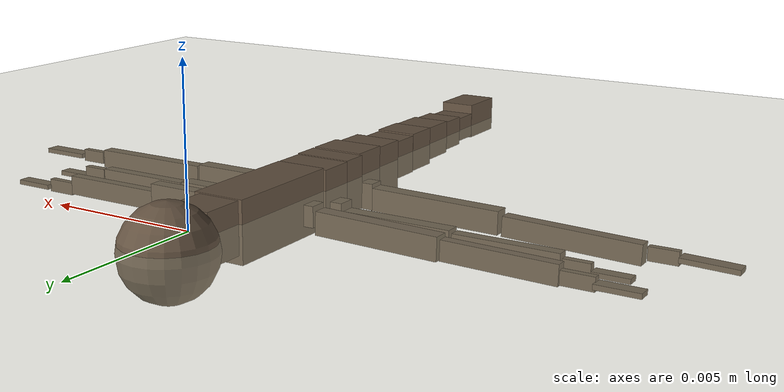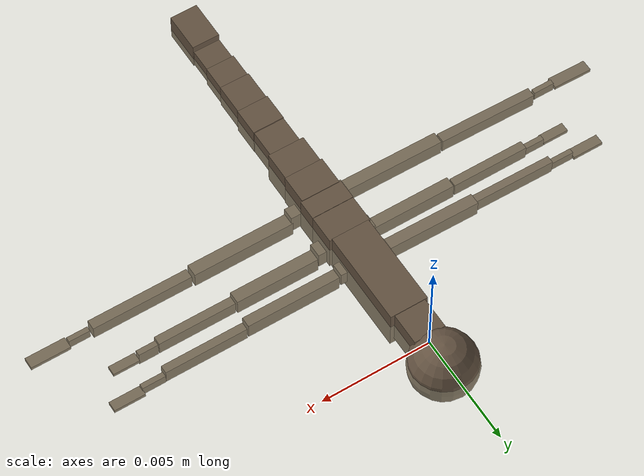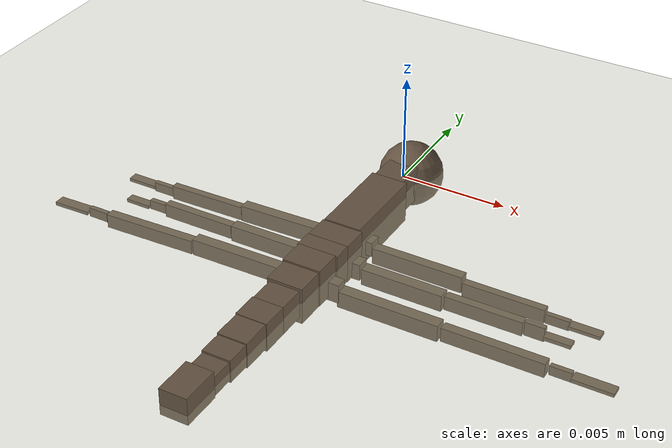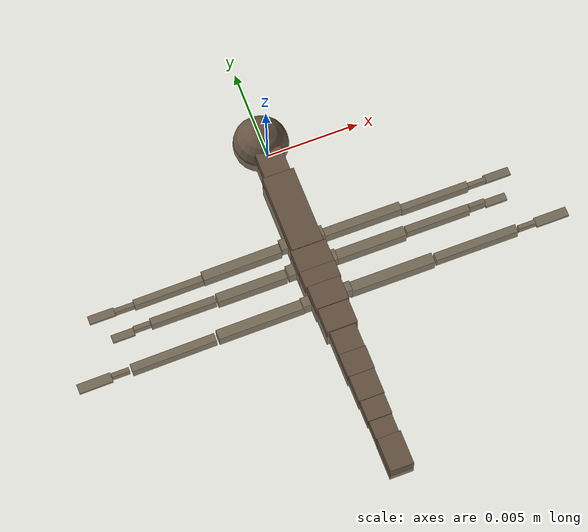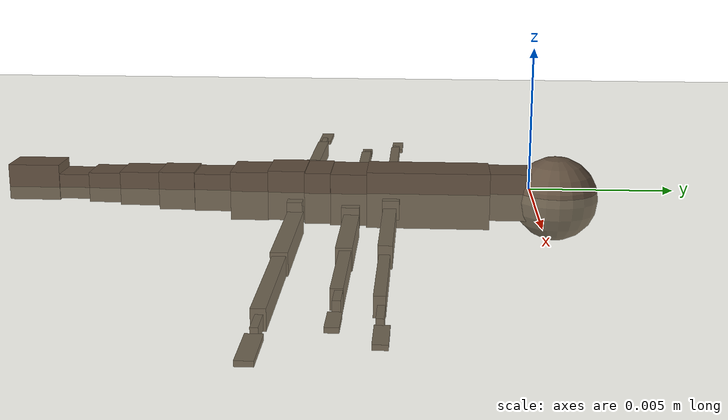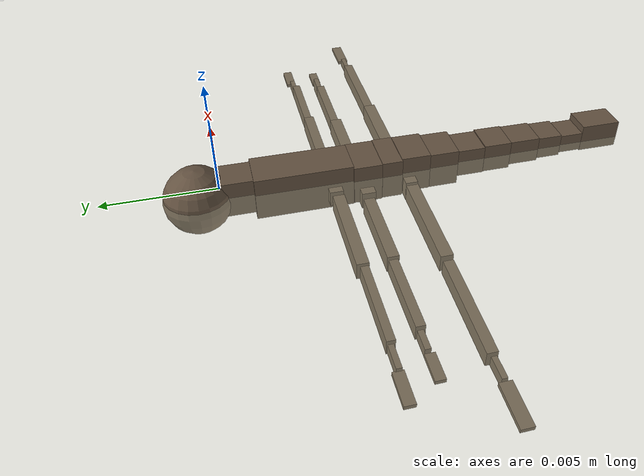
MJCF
<?xml version='1.0' encoding='utf-8'?>
<mujoco model="sungaya">
      <option integrator="RK4"/>
      <visual>
        <global offwidth="2048" offheight="2048"/>
      </visual>
      <compiler angle="radian" autolimits="true"/>
        <custom>
        <numeric data="0 0 0.05 0.7 0 0 0.7 0 0 0 0 0 0 0 0 0 0 0 0 0 0 0 0 0 0 0 0 0 0 0 0 0 0 0 0 0 0 0 0 0 0 0 0 0 0" name="qpos0"/>
        <numeric data="0.01" name="dt"/>
        <numeric data="15" name="substeps"/>
        <numeric data="0.1" name="baumgarte_erp"/>
        </custom>

    <worldbody>
        <light diffuse=".75 .75 .75" pos="0 0 10" dir="0 0 -1"/>

        <geom type="plane" size="0.1 0.1 0.01" rgba=".7 .7 .6 1"/>
        <body name="reference_base" pos="0 0 0">
            <joint armature="0" damping="0" limited="false" margin="0.01" name="root" pos="0 0 0" type="free"/>
        <geom name="03-caput" size="0.00149427" pos="-5.24869e-05 0.000941675 -0.000344469" rgba="0.4 0.33 0.26 1.0" />
        <geom name="04-t1" size="0.000713237 0.000717915 0.000842712" pos="2.17649e-06 -0.00070639 -0.000159406" type="box" rgba="0.4 0.33 0.26 1.0" />
        <body name="04-t1-l" pos="4.21295e-05 -0.00142995 -0.000246174">
            <inertial pos="0 0 0" mass="0.01" diaginertia="0.001 0.001 0.001" />
            <geom name="05-t2" size="0.000865397 0.00215931 0.00100157" pos="-1.27246e-05 -0.00215714 -3.96312e-05" type="box" rgba="0.4 0.33 0.26 1.0" />
            <body name="05-t2-l" pos="-1.4549e-06 -0.00430799 -3.55078e-05">
                <inertial pos="0 0 0" mass="0.01" diaginertia="0.001 0.001 0.001" />
                <geom name="06-t3" size="0.000960231 0.000641229 0.000922256" pos="2.73852e-06 -0.000634313 1.76948e-05" type="box" rgba="0.4 0.33 0.26 1.0" />
                <body name="06-t3-l" pos="-1.60261e-05 -0.00127103 2.06451e-06">
                    <inertial pos="0 0 0" mass="0.01" diaginertia="0.001 0.001 0.001" />
                    <geom name="07-a2" size="0.000965959 0.000459281 0.000912372" pos="2.09951e-05 -0.000455685 5.58723e-05" type="box" rgba="0.4 0.33 0.26 1.0" />
                    <body name="07-a2-l" pos="2.54216e-05 -0.000909254 0.000100916">
                        <inertial pos="0 0 0" mass="0.01" diaginertia="0.001 0.001 0.001" />
                        <joint type="hinge" name="07-a2-l" pos="0 0 0" axis="1 0 0" range="-3.14 3.14" />
                        <geom name="08-a3" size="0.000887816 0.00065527 0.000887237" pos="3.22609e-06 -0.000649549 2.07727e-05" type="box" rgba="0.4 0.33 0.26 1.0" />
                        <body name="08-a3-l" pos="8.07024e-06 -0.00129344 5.3167e-05">
                            <inertial pos="0 0 0" mass="0.01" diaginertia="0.001 0.001 0.001" />
                            <joint type="hinge" name="08-a3-l" pos="0 0 0" axis="1 0 0" range="-3.14 3.14" />
                            <geom name="09-a4" size="0.000834476 0.000681203 0.000865493" pos="3.04102e-06 -0.000670744 -8.44479e-05" type="box" rgba="0.4 0.33 0.26 1.0" />
                            <body name="09-a4-l" pos="8.11249e-06 -0.00134962 4.00092e-05">
                                <inertial pos="0 0 0" mass="0.01" diaginertia="0.001 0.001 0.001" />
                                <joint type="hinge" name="09-a4-l" pos="0 0 0" axis="1 0 0" range="-3.14 3.14" />
                                <geom name="10-a5" size="0.000704729 0.000658293 0.000667025" pos="1.64041e-06 -0.000656146 -4.87305e-05" type="box" rgba="0.4 0.33 0.26 1.0" />
                                <body name="10-a5-l" pos="8.62755e-06 -0.00131172 -2.10435e-05">
                                    <inertial pos="0 0 0" mass="0.01" diaginertia="0.001 0.001 0.001" />
                                    <joint type="hinge" name="10-a5-l" pos="0 0 0" axis="1 0 0" range="-3.14 3.14" />
                                    <geom name="11-a6" size="0.000720344 0.000635323 0.000676071" pos="4.33737e-06 -0.000632805 1.85342e-05" type="box" rgba="0.4 0.33 0.26 1.0" />
                                    <body name="11-a6-l" pos="8.04149e-06 -0.00126429 5.28563e-05">
                                        <inertial pos="0 0 0" mass="0.01" diaginertia="0.001 0.001 0.001" />
                                        <joint type="hinge" name="11-a6-l" pos="0 0 0" axis="1 0 0" range="-3.14 3.14" />
                                        <geom name="12-a7" size="0.000683332 0.000704938 0.00059961" pos="5.06168e-06 -0.000701 2.06256e-05" type="box" rgba="0.4 0.33 0.26 1.0" />
                                        <body name="12-a7-l" pos="2.35532e-05 -0.00140457 -1.60789e-05">
                                            <inertial pos="0 0 0" mass="0.01" diaginertia="0.001 0.001 0.001" />
                                            <joint type="hinge" name="12-a7-l" pos="0 0 0" axis="1 0 0" range="-3.14 3.14" />
                                            <geom name="13-a8" size="0.000650966 0.000568766 0.000532876" pos="-1.01606e-05 -0.000567316 5.14981e-05" type="box" rgba="0.4 0.33 0.26 1.0" />
                                            <body name="13-a8-l" pos="-7.70643e-06 -0.00113178 0.000132728">
                                                <inertial pos="0 0 0" mass="0.01" diaginertia="0.001 0.001 0.001" />
                                                <joint type="hinge" name="13-a8-l" pos="0 0 0" axis="1 0 0" range="-3.14 3.14" />
                                                <geom name="14-a9" size="0.000611923 0.000548143 0.000441068" pos="1.51173e-06 -0.000544691 -6.99077e-05" type="box" rgba="0.4 0.33 0.26 1.0" />
                                                <body name="14-a9-l" pos="6.80901e-06 -0.00109024 -9.04712e-05">
                                                    <inertial pos="0 0 0" mass="0.01" diaginertia="0.001 0.001 0.001" />
                                                    <joint type="hinge" name="14-a9-l" pos="0 0 0" axis="1 0 0" range="-3.14 3.14" />
                                                    <geom name="15-a10" size="0.00063153 0.000910222 0.000634835" pos="1.05717e-05 -0.000907943 0.000163787" type="box" rgba="0.4 0.33 0.26 1.0" />
                                                </body>
                                            </body>
                                        </body>
                                    </body>
                                </body>
                            </body>
                        </body>
                    <body name="26-h-l-coxa-l" pos="-0.000817213 -0.000356208 -0.000466443">
                        <inertial pos="0 0 0" mass="0.01" diaginertia="0.001 0.001 0.001" />
                        <joint type="hinge" name="26-h-l-coxa-l" pos="0 0 0" axis="0 0 -1" range="-3.14 3.14" />
                        <geom name="26-h-l-coxa" size="0.000322026 0.000270653 0.00045107" pos="-0.00019179 2.18258e-05 -7.38225e-05" type="box" rgba="0.4 0.33 0.26 1.0" />
                        <body name="27-h-l-femur-l" pos="-0.000423852 4.56937e-05 -0.000307395" quat="0.987992 1.55568e-12 0.154502 2.07607e-08">
                            <inertial pos="0 0 0" mass="0.01" diaginertia="0.001 0.001 0.001" />
                            <joint type="hinge" name="27-h-l-femur-l" pos="0 0 0" axis="0 1 0" range="-3.14 3.14" />
                            <geom name="27-h-l-femur" size="0.00232176 0.000271339 0.000391676" pos="-0.00227579 -3.74297e-05 -0.000605274" quat="0.986874 -1.58607e-12 -0.161491 -2.16968e-08" type="box" rgba="0.4 0.33 0.26 1.0" />
                            <body name="28-h-l-tibia-l" pos="-0.00447627 -1.95907e-05 -0.0015365" quat="1 0 1.49e-08 0">
                                <inertial pos="0 0 0" mass="0.01" diaginertia="0.001 0.001 0.001" />
                                <joint type="hinge" name="28-h-l-tibia-l" pos="0 0 0" axis="0 -1 0.0" range="-3.14 3.14" />
                                <geom name="28-h-l-tibia" size="0.002278 0.000222 0.000335031" pos="-0.00222862 -2.94404e-05 -0.000689297" quat="0.98557 1.65593e-12 -0.16927 -2.27405e-08" type="box" rgba="0.4 0.33 0.26 1.0" />
                                <body name="29-h-l-tarsus-l" pos="-0.00449652 -3.2062e-05 -0.0014177" quat="1 0 1.49e-08 0">
                                    <inertial pos="0 0 0" mass="0.01" diaginertia="0.001 0.001 0.001" />
                                    <joint type="hinge" name="29-h-l-tarsus-l" pos="0 0 0" axis="0 1 0.0" range="-3.14 3.14" />
                                    <geom name="29-h-l-tarsus" size="0.000477453 0.000113415 0.000224862" pos="-0.000467184 4.72285e-06 -0.000160826" quat="0.988233 2.40259e-12 -0.152958 -2.05495e-08" type="box" rgba="0.4 0.33 0.26 1.0" />
                                    <body name="30-h-l-claws-l" pos="-0.000915603 7.69482e-06 -0.000296998" quat="1 0 1.49e-08 0">
                                        <inertial pos="0 0 0" mass="0.01" diaginertia="0.001 0.001 0.001" />
                                        <joint type="hinge" name="30-h-l-claws-l" pos="0 0 0" axis="0 1 0.0" range="-3.14 3.14" />
                                        <geom name="30-h-l-claws" size="0.000901551 0.000259963 8.37348e-05" pos="-0.000866338 -2.77746e-05 -0.000312802" quat="0.985773 1.78305e-12 -0.168084 -2.25828e-08" type="box" rgba="0.4 0.33 0.26 1.0" />
                                    </body>
                                </body>
                            </body>
                        </body>
                    </body>
                    <body name="42-h-r-coxa-l" pos="0.000861746 -0.000345635 -0.000465158">
                        <inertial pos="0 0 0" mass="0.01" diaginertia="0.001 0.001 0.001" />
                        <joint type="hinge" name="42-h-r-coxa-l" pos="0 0 0" axis="0 0 1" range="-3.14 3.14" />
                        <geom name="42-h-r-coxa" size="0.000320097 0.00026969 0.000450966" pos="0.000191144 2.39373e-05 -7.35639e-05" type="box" rgba="0.4 0.33 0.26 1.0" />
                        <body name="43-h-r-femur-l" pos="0.000423712 5.10311e-05 -0.000306747" quat="0.988071 0 -0.154001 -2.06938e-08">
                            <inertial pos="0 0 0" mass="0.01" diaginertia="0.001 0.001 0.001" />
                            <joint type="hinge" name="43-h-r-femur-l" pos="0 0 0" axis="0 -1 0" range="-3.14 3.14" />
                            <geom name="43-h-r-femur" size="0.00232224 0.000280654 0.0003915" pos="0.00222649 8.62393e-06 -0.000758239" quat="0.988071 0 0.154001 2.06938e-08" type="box" rgba="0.4 0.33 0.26 1.0" />
                            <body name="44-h-r-tibia-l" pos="0.0044785 3.67995e-05 -0.00152965">
                                <inertial pos="0 0 0" mass="0.01" diaginertia="0.001 0.001 0.001" />
                                <joint type="hinge" name="44-h-r-tibia-l" pos="0 0 0" axis="0 1 0.0" range="-3.14 3.14" />
                                <geom name="44-h-r-tibia" size="0.00227813 0.000222 0.000335" pos="0.00222988 -1.40283e-05 -0.000685865" quat="0.988071 3.30456e-09 0.154001 2.01787e-08" type="box" rgba="0.4 0.33 0.26 1.0" />
                                <body name="45-h-r-tarsus-l" pos="0.00449872 2.45837e-05 -0.00141082" quat="1 0 1.49e-08 0">
                                    <inertial pos="0 0 0" mass="0.01" diaginertia="0.001 0.001 0.001" />
                                    <joint type="hinge" name="45-h-r-tarsus-l" pos="0 0 0" axis="0 -1 0.0" range="-3.14 3.14" />
                                    <geom name="45-h-r-tarsus" size="0.000477326 0.000113396 0.000224184" pos="0.000466772 4.7597e-06 -0.000160136" quat="0.988071 3.30456e-09 0.154001 2.01787e-08" type="box" rgba="0.4 0.33 0.26 1.0" />
                                    <body name="46-h-r-claws-l" pos="0.000915888 1.92288e-05 -0.000295598" quat="1 0 1.49e-08 0">
                                        <inertial pos="0 0 0" mass="0.01" diaginertia="0.001 0.001 0.001" />
                                        <joint type="hinge" name="46-h-r-claws-l" pos="0 0 0" axis="0 -1 0.0" range="-3.14 3.14" />
                                        <geom name="46-h-r-claws" size="0.000901932 0.000259661 8.35e-05" pos="0.000867407 -6.23643e-06 -0.000311472" quat="0.988071 3.30456e-09 0.154001 2.01787e-08" type="box" rgba="0.4 0.33 0.26 1.0" />
                                    </body>
                                </body>
                            </body>
                        </body>
                    </body>
                </body>
                <body name="21-m-l-coxa-l" pos="-0.000712497 0.000737672 -0.000452174">
                    <inertial pos="0 0 0" mass="0.01" diaginertia="0.001 0.001 0.001" />
                    <joint type="hinge" name="21-m-l-coxa-l" pos="0 0 0" axis="0 0 -1" range="-3.14 3.14" />
                    <geom name="21-m-l-coxa" size="0.000421454 0.000313806 0.000393854" pos="-0.000232919 -2.39988e-05 -9.91887e-05" type="box" rgba="0.4 0.33 0.26 1.0" />
                    <body name="22-m-l-femur-l" pos="-0.000630804 -3.51798e-05 -0.000315487" quat="0.98995 0 0.141415 1.90021e-08">
                        <inertial pos="0 0 0" mass="0.01" diaginertia="0.001 0.001 0.001" />
                        <joint type="hinge" name="22-m-l-femur-l" pos="0 0 0" axis="0 1 0" range="-3.14 3.14" />
                        <geom name="22-m-l-femur" size="0.0018953 0.00025126 0.0003915" pos="-0.00187516 2.74403e-05 -0.000585178" quat="0.98995 1.40893e-12 -0.141415 7.90547e-10" type="box" rgba="0.4 0.33 0.26 1.0" />
                        <body name="23-m-l-tibia-l" pos="-0.00373081 8.10779e-05 -0.00116357">
                            <inertial pos="0 0 0" mass="0.01" diaginertia="0.001 0.001 0.001" />
                            <joint type="hinge" name="23-m-l-tibia-l" pos="0 0 0" axis="0 -1 0.0" range="-3.14 3.14" />
                            <geom name="23-m-l-tibia" size="0.00176462 0.000195388 0.000335" pos="-0.00172269 -2.62468e-05 -0.000497057" quat="0.98995 1.40893e-12 -0.141415 7.90547e-10" type="box" rgba="0.4 0.33 0.26 1.0" />
                            <body name="24-m-l-tarsus-l" pos="-0.00345332 -7.4762e-07 -0.00104215">
                                <inertial pos="0 0 0" mass="0.01" diaginertia="0.001 0.001 0.001" />
                                <joint type="hinge" name="24-m-l-tarsus-l" pos="0 0 0" axis="0 1 0.0" range="-3.14 3.14" />
                                <geom name="24-m-l-tarsus" size="0.000442816 0.00012258 0.000225" pos="-0.000414602 -6.9477e-07 -0.000128837" quat="0.98995 1.40894e-12 -0.141415 7.90547e-10" type="box" rgba="0.4 0.33 0.26 1.0" />
                                <body name="25-m-l-claws-l" pos="-0.000831341 2.90463e-05 -0.000251224">
                                    <inertial pos="0 0 0" mass="0.01" diaginertia="0.001 0.001 0.001" />
                                    <joint type="hinge" name="25-m-l-claws-l" pos="0 0 0" axis="0 1 0.0" range="-3.14 3.14" />
                                    <geom name="25-m-l-claws" size="0.000596539 0.000211304 8.35e-05" pos="-0.000562719 -9.41032e-05 -0.00024871" quat="0.98995 1.40894e-12 -0.141415 7.90547e-10" type="box" rgba="0.4 0.33 0.26 1.0" />
                                </body>
                            </body>
                        </body>
                    </body>
                </body>
                <body name="37-m-r-coxa-l" pos="0.000695185 0.000746537 -0.000451098">
                    <inertial pos="0 0 0" mass="0.01" diaginertia="0.001 0.001 0.001" />
                    <joint type="hinge" name="37-m-r-coxa-l" pos="0 0 0" axis="0 0 1" range="-3.14 3.14" />
                    <geom name="37-m-r-coxa" size="0.000423258 0.000313125 0.000393504" pos="0.000234251 -2.20893e-05 -9.85875e-05" type="box" rgba="0.4 0.33 0.26 1.0" />
                    <body name="38-m-r-femur-l" pos="0.000631678 -2.72279e-05 -0.000314522" quat="0.989456 -2.22389e-12 -0.144837 -1.94622e-08">
                        <inertial pos="0 0 0" mass="0.01" diaginertia="0.001 0.001 0.001" />
                        <joint type="hinge" name="38-m-r-femur-l" pos="0 0 0" axis="0 -1 0" range="-3.14 3.14" />
                        <geom name="38-m-r-femur" size="0.00189654 0.000273892 0.0003915" pos="0.0018735 5.03578e-05 -0.000582443" quat="0.989456 2.91172e-09 0.144837 1.90357e-08" type="box" rgba="0.4 0.33 0.26 1.0" />
                        <body name="39-m-r-tibia-l" pos="0.00373127 0.000128067 -0.00115786">
                            <inertial pos="0 0 0" mass="0.01" diaginertia="0.001 0.001 0.001" />
                            <joint type="hinge" name="39-m-r-tibia-l" pos="0 0 0" axis="0 1.0 0.0" range="-3.14 3.14" />
                            <geom name="39-m-r-tibia" size="0.00176668 0.000195701 0.000335" pos="0.00172319 -2.60931e-05 -0.000494435" quat="0.989456 2.91172e-09 0.144837 1.90357e-08" type="box" rgba="0.4 0.33 0.26 1.0" />
                            <body name="40-m-r-tarsus-l" pos="0.00345464 4.27538e-05 -0.00103686">
                                <inertial pos="0 0 0" mass="0.01" diaginertia="0.001 0.001 0.001" />
                                <joint type="hinge" name="40-m-r-tarsus-l" pos="0 0 0" axis="0 -1.0 0.0" range="-3.14 3.14" />
                                <geom name="40-m-r-tarsus" size="0.000442301 0.000122559 0.000335" pos="0.000414367 -7.7812e-07 -0.000128199" quat="0.989456 2.91172e-09 0.144837 1.90357e-08" type="box" rgba="0.4 0.33 0.26 1.0" />
                                <body name="41-m-r-claws-l" pos="0.000831292 3.95158e-05 -0.000249951">
                                    <inertial pos="0 0 0" mass="0.01" diaginertia="0.001 0.001 0.001" />
                                    <joint type="hinge" name="41-m-r-claws-l" pos="0 0 0" axis="0 -1.0 0.0" range="-3.14 3.14" />
                                    <geom name="41-m-r-claws" size="0.00059705 0.000211357 8.35e-05" pos="0.000563421 -7.98677e-05 -0.000247802" quat="0.989456 2.91172e-09 0.144837 1.90357e-08" type="box" rgba="0.4 0.33 0.26 1.0" />
                                </body>
                            </body>
                        </body>
                    </body>
                </body>
            </body>
            <body name="16-f-l-coxa-l" pos="-0.000584662 0.000865526 -0.000268343">
                <inertial pos="0 0 0" mass="0.01" diaginertia="0.001 0.001 0.001" />
                <joint type="hinge" name="16-f-l-coxa-l" pos="0 0 0" axis="0 0 -1" range="-3.14 3.14" />
                <geom name="16-f-l-coxa" size="0.000397624 0.000299789 0.000348915" pos="-0.000244701 -1.63685e-05 -1.1691e-05" type="box" rgba="0.4 0.33 0.26 1.0" />
                <body name="17-f-l-femur-l" pos="-0.00062063 -3.04091e-05 -0.000205417" quat="0.995466 2.13088e-12 0.0951175 1.27783e-08">
                    <inertial pos="0 0 0" mass="0.01" diaginertia="0.001 0.001 0.001" />
                    <joint type="hinge" name="17-f-l-femur-l" pos="0 0 0" axis="0 1 0" range="-3.14 3.14" />
                    <geom name="17-f-l-femur" size="0.00213422 0.00025951 0.0003915" pos="-0.00211681 -5.39212e-05 -0.000482417" quat="0.9943 -2.71124e-09 -0.106618 -2.61238e-10" type="box" rgba="0.4 0.33 0.26 1.0" />
                    <body name="18-f-l-tibia-l" pos="-0.00421775 -8.42218e-05 -0.000994403" quat="1 0 7.45e-09 0">
                        <inertial pos="0 0 0" mass="0.01" diaginertia="0.001 0.001 0.001" />
                        <joint type="hinge" name="18-f-l-tibia-l" pos="0 0 0" axis="0 -1 0.0" range="-3.14 3.14" />
                        <geom name="18-f-l-tibia" size="0.0018741 0.000174657 0.000335" pos="-0.00183924 -2.13366e-05 -0.000390169" quat="0.994552 -2.65285e-09 -0.104239 -2.53454e-10" type="box" rgba="0.4 0.33 0.26 1.0" />
                        <body name="19-f-l-tarsus-l" pos="-0.00369065 2.67476e-06 -0.000807307" quat="1 0 7.45e-09 0">
                            <inertial pos="0 0 0" mass="0.01" diaginertia="0.001 0.001 0.001" />
                            <joint type="hinge" name="19-f-l-tarsus-l" pos="0 0 0" axis="0 1 0.0" range="-3.14 3.14" />
                            <geom name="19-f-l-tarsus" size="0.000528083 0.00011624 0.000225" pos="-0.000499104 -5.57117e-06 -0.000141514" quat="0.995387 -2.44367e-09 -0.0959459 -2.35547e-10" type="box" rgba="0.4 0.33 0.26 1.0" />
                            <body name="20-f-l-claws-l" pos="-0.00100061 -2.04411e-05 -0.000281606" quat="1 0 7.45e-09 0">
                                <inertial pos="0 0 0" mass="0.01" diaginertia="0.001 0.001 0.001" />
                                <joint type="hinge" name="20-f-l-claws-l" pos="0 0 0" axis="0 1 0.0" range="-3.14 3.14" />
                                <geom name="20-f-l-claws" size="0.00070677 0.000226513 8.35e-05" pos="-0.000678042 5.03608e-05 -0.000109415" quat="0.995466 -2.05844e-12 -0.0951176 2.36534e-10" type="box" rgba="0.4 0.33 0.26 1.0" />
                            </body>
                        </body>
                    </body>
                </body>
            </body>
            <body name="31-f-r-coxa-l" pos="0.000508251 0.000872408 -0.000267507">
                <inertial pos="0 0 0" mass="0.01" diaginertia="0.001 0.001 0.001" />
                <joint type="hinge" name="31-f-r-coxa-l" pos="0 0 0" axis="0 0 1" range="-3.14 3.14" />
                <geom name="31-f-r-coxa" size="0.00039681 0.000296867 0.000348577" pos="0.000243399 -1.4788e-05 -1.10955e-05" type="box" rgba="0.4 0.33 0.26 1.0" />
                <body name="32-f-r-femur-l" pos="0.000621275 -2.25869e-05 -0.000204468" quat="0.996539 -1.2752e-12 -0.0831212 -1.11678e-08">
                    <inertial pos="0 0 0" mass="0.01" diaginertia="0.001 0.001 0.001" />
                    <joint type="hinge" name="32-f-r-femur-l" pos="0 0 0" axis="0 -1.0 0" range="-3.14 3.14" />
                    <geom name="32-f-r-femur" size="0.00213397 0.00023355 0.0003915" pos="0.00211918 -2.77292e-05 -0.000479202" quat="0.996539 9.40455e-10 0.0831212 1.10893e-08" type="box" rgba="0.4 0.33 0.26 1.0" />
                    <body name="33-f-r-tibia-l" pos="0.00421999 -3.10876e-05 -0.00098795">
                        <inertial pos="0 0 0" mass="0.01" diaginertia="0.001 0.001 0.001" />
                        <joint type="hinge" name="33-f-r-tibia-l" pos="0 0 0" axis="0 1 0" range="-3.14 3.14" />
                        <geom name="33-f-r-tibia" size="0.00187435 0.000182726 0.000335" pos="0.00183977 -1.32583e-05 -0.000387248" quat="0.996539 9.40455e-10 0.0831212 1.10893e-08" type="box" rgba="0.4 0.33 0.26 1.0" />
                        <body name="35-f-r-tarsus-l" pos="0.00369156 4.91617e-05 -0.000801659">
                            <inertial pos="0 0 0" mass="0.01" diaginertia="0.001 0.001 0.001" />
                            <joint type="hinge" name="35-f-r-tarsus-l" pos="0 0 0" axis="0 -1.0 0.0" range="-3.14 3.14" />
                            <geom name="35-f-r-tarsus" size="0.00052802 0.000116403 0.000225" pos="0.000499769 -5.4962e-06 -0.000140754" quat="0.996539 9.40455e-10 0.0831212 1.10893e-08" type="box" rgba="0.4 0.33 0.26 1.0" />
                            <body name="36-f-r-claws-l" pos="0.00100122 -7.83429e-06 -0.000280076">
                                <inertial pos="0 0 0" mass="0.01" diaginertia="0.001 0.001 0.001" />
                                <joint type="hinge" name="36-f-r-claws-l" pos="0 0 0" axis="0 -1.0 0.0" range="-3.14 3.14" />
                                <geom name="36-f-r-claws" size="0.000706716 0.000226432 8.35e-05" pos="0.000678616 6.72541e-05 -0.000108414" quat="0.996539 9.40455e-10 0.0831212 1.10893e-08" type="box" rgba="0.4 0.33 0.26 1.0" />
                            </body>
                        </body>
                    </body>
                </body>
            </body>
        </body>
        </body>
    </body>
    </worldbody>
    <actuator>

        <motor forcelimited="true" forcerange="-10 10" ctrllimited="true" ctrlrange="-1.0 1.0"  name="07-a2-l" joint="07-a2-l" gear="1" />
        <motor forcelimited="true" forcerange="-10 10" ctrllimited="true" ctrlrange="-1.0 1.0"  name="08-a3-l" joint="08-a3-l" gear="1" />
        <motor forcelimited="true" forcerange="-10 10" ctrllimited="true" ctrlrange="-1.0 1.0"  name="09-a4-l" joint="09-a4-l" gear="1" />
        <motor forcelimited="true" forcerange="-10 10" ctrllimited="true" ctrlrange="-1.0 1.0"  name="10-a5-l" joint="10-a5-l" gear="1" />
        <motor forcelimited="true" forcerange="-10 10" ctrllimited="true" ctrlrange="-1.0 1.0"  name="11-a6-l" joint="11-a6-l" gear="1" />
        <motor forcelimited="true" forcerange="-10 10" ctrllimited="true" ctrlrange="-1.0 1.0"  name="12-a7-l" joint="12-a7-l" gear="1" />
        <motor forcelimited="true" forcerange="-10 10" ctrllimited="true" ctrlrange="-1.0 1.0"  name="13-a8-l" joint="13-a8-l" gear="1" />
        <motor forcelimited="true" forcerange="-10 10" ctrllimited="true" ctrlrange="-1.0 1.0"  name="14-a9-l" joint="14-a9-l" gear="1" />

        <motor forcelimited="true" forcerange="-10 10" ctrllimited="true" ctrlrange="-1.0 1.0"  name="26-h-l-coxa-l" joint="26-h-l-coxa-l" gear="1" />
        <motor forcelimited="true" forcerange="-10 10" ctrllimited="true" ctrlrange="-1.0 1.0"  name="27-h-l-femur-l" joint="27-h-l-femur-l" gear="1" />
        <motor forcelimited="true" forcerange="-10 10" ctrllimited="true" ctrlrange="-1.0 1.0"  name="28-h-l-tibia-l" joint="28-h-l-tibia-l" gear="1" />
        <motor forcelimited="true" forcerange="-10 10" ctrllimited="true" ctrlrange="-1.0 1.0"  name="29-h-l-tarsus-l" joint="29-h-l-tarsus-l" gear="1" />
        <motor forcelimited="true" forcerange="-10 10" ctrllimited="true" ctrlrange="-1.0 1.0"  name="30-h-l-claws-l" joint="30-h-l-claws-l" gear="1" />
        <motor forcelimited="true" forcerange="-10 10" ctrllimited="true" ctrlrange="-1.0 1.0"  name="42-h-r-coxa-l" joint="42-h-r-coxa-l" gear="1" />
        <motor forcelimited="true" forcerange="-10 10" ctrllimited="true" ctrlrange="-1.0 1.0"  name="43-h-r-femur-l" joint="43-h-r-femur-l" gear="1" />
        <motor forcelimited="true" forcerange="-10 10" ctrllimited="true" ctrlrange="-1.0 1.0"  name="44-h-r-tibia-l" joint="44-h-r-tibia-l" gear="1" />
        <motor forcelimited="true" forcerange="-10 10" ctrllimited="true" ctrlrange="-1.0 1.0"  name="45-h-r-tarsus-l" joint="45-h-r-tarsus-l" gear="1" />
        <motor forcelimited="true" forcerange="-10 10" ctrllimited="true" ctrlrange="-1.0 1.0"  name="46-h-r-claws-l" joint="46-h-r-claws-l" gear="1" />
        <motor forcelimited="true" forcerange="-10 10" ctrllimited="true" ctrlrange="-1.0 1.0"  name="21-m-l-coxa-l" joint="21-m-l-coxa-l" gear="1" />
        <motor forcelimited="true" forcerange="-10 10" ctrllimited="true" ctrlrange="-1.0 1.0"  name="22-m-l-femur-l" joint="22-m-l-femur-l" gear="1" />
        <motor forcelimited="true" forcerange="-10 10" ctrllimited="true" ctrlrange="-1.0 1.0"  name="23-m-l-tibia-l" joint="23-m-l-tibia-l" gear="1" />
        <motor forcelimited="true" forcerange="-10 10" ctrllimited="true" ctrlrange="-1.0 1.0"  name="24-m-l-tarsus-l" joint="24-m-l-tarsus-l" gear="1" />
        <motor forcelimited="true" forcerange="-10 10" ctrllimited="true" ctrlrange="-1.0 1.0"  name="25-m-l-claws-l" joint="25-m-l-claws-l" gear="1" />
        <motor forcelimited="true" forcerange="-10 10" ctrllimited="true" ctrlrange="-1.0 1.0"  name="37-m-r-coxa-l" joint="37-m-r-coxa-l" gear="1" />
        <motor forcelimited="true" forcerange="-10 10" ctrllimited="true" ctrlrange="-1.0 1.0"  name="38-m-r-femur-l" joint="38-m-r-femur-l" gear="1" />
        <motor forcelimited="true" forcerange="-10 10" ctrllimited="true" ctrlrange="-1.0 1.0"  name="39-m-r-tibia-l" joint="39-m-r-tibia-l" gear="1" />
        <motor forcelimited="true" forcerange="-10 10" ctrllimited="true" ctrlrange="-1.0 1.0"  name="40-m-r-tarsus-l" joint="40-m-r-tarsus-l" gear="1" />
        <motor forcelimited="true" forcerange="-10 10" ctrllimited="true" ctrlrange="-1.0 1.0"  name="41-m-r-claws-l" joint="41-m-r-claws-l" gear="1" />
        <motor forcelimited="true" forcerange="-10 10" ctrllimited="true" ctrlrange="-1.0 1.0"  name="16-f-l-coxa-l" joint="16-f-l-coxa-l" gear="1" />
        <motor forcelimited="true" forcerange="-10 10" ctrllimited="true" ctrlrange="-1.0 1.0"  name="17-f-l-femur-l" joint="17-f-l-femur-l" gear="1" />
        <motor forcelimited="true" forcerange="-10 10" ctrllimited="true" ctrlrange="-1.0 1.0"  name="18-f-l-tibia-l" joint="18-f-l-tibia-l" gear="1" />
        <motor forcelimited="true" forcerange="-10 10" ctrllimited="true" ctrlrange="-1.0 1.0"  name="19-f-l-tarsus-l" joint="19-f-l-tarsus-l" gear="1" />
        <motor forcelimited="true" forcerange="-10 10" ctrllimited="true" ctrlrange="-1.0 1.0"  name="20-f-l-claws-l" joint="20-f-l-claws-l" gear="1" />
        <motor forcelimited="true" forcerange="-10 10" ctrllimited="true" ctrlrange="-1.0 1.0"  name="31-f-r-coxa-l" joint="31-f-r-coxa-l" gear="1" />
        <motor forcelimited="true" forcerange="-10 10" ctrllimited="true" ctrlrange="-1.0 1.0"  name="32-f-r-femur-l" joint="32-f-r-femur-l" gear="1" />
        <motor forcelimited="true" forcerange="-10 10" ctrllimited="true" ctrlrange="-1.0 1.0"  name="33-f-r-tibia-l" joint="33-f-r-tibia-l" gear="1" />
        <motor forcelimited="true" forcerange="-10 10" ctrllimited="true" ctrlrange="-1.0 1.0"  name="35-f-r-tarsus-l" joint="35-f-r-tarsus-l" gear="1" />
        <motor forcelimited="true" forcerange="-10 10" ctrllimited="true" ctrlrange="-1.0 1.0"  name="36-f-r-claws-l" joint="36-f-r-claws-l" gear="1" />
        </actuator>
    <sensor>
        <framepos name="04-t1-l" objtype="body" objname="04-t1-l" />
        </sensor>
    </mujoco>
